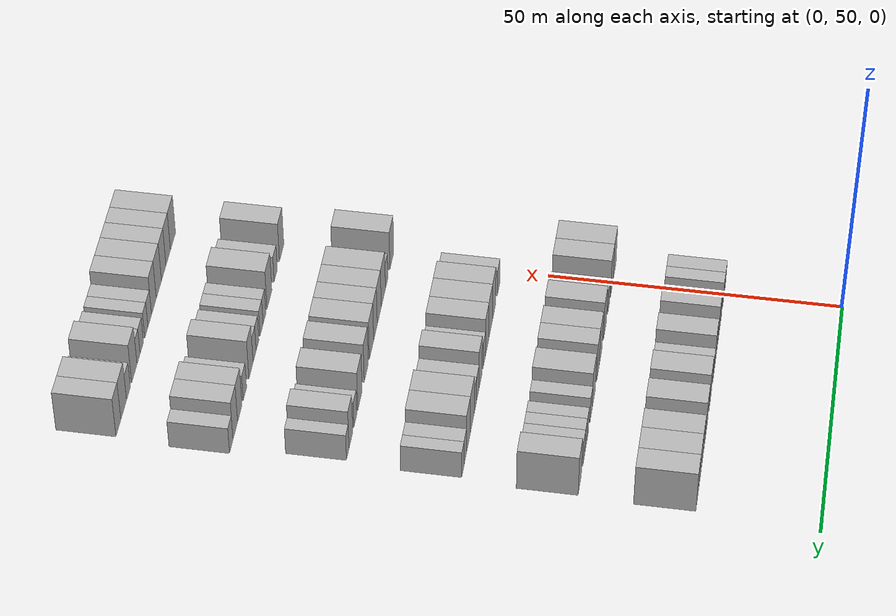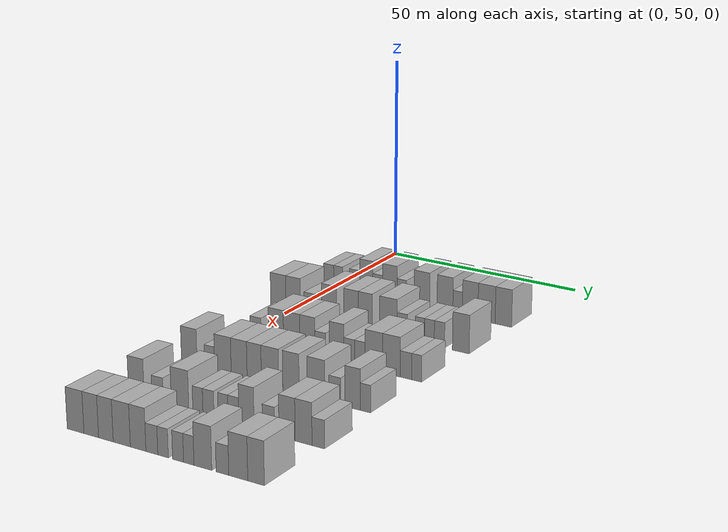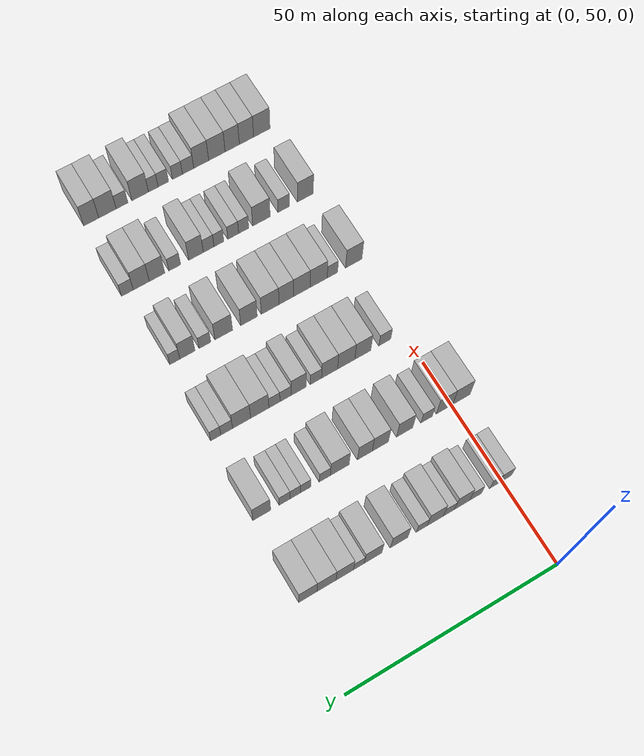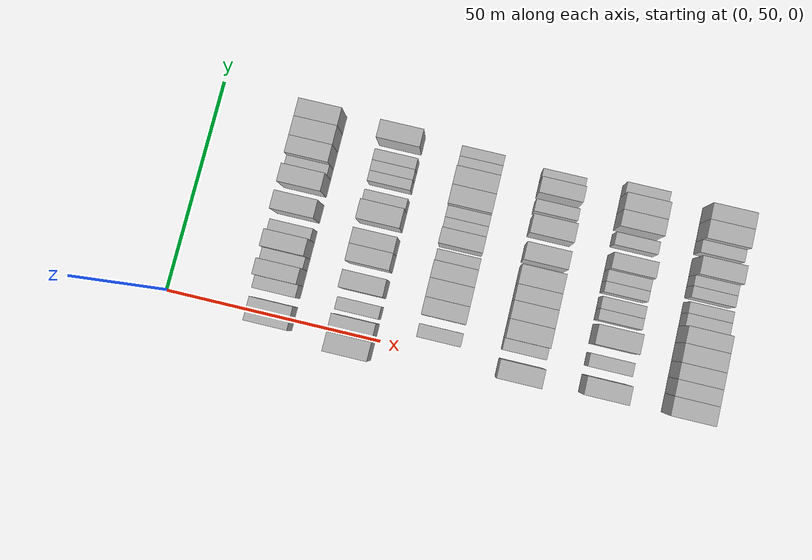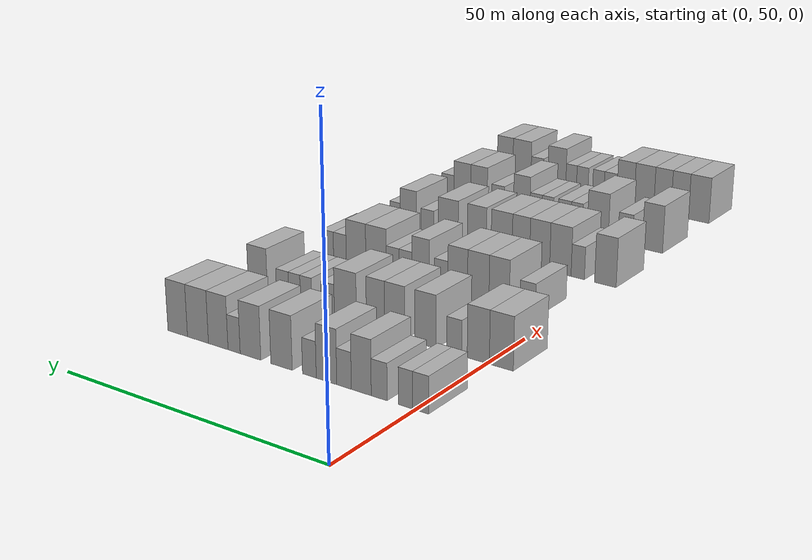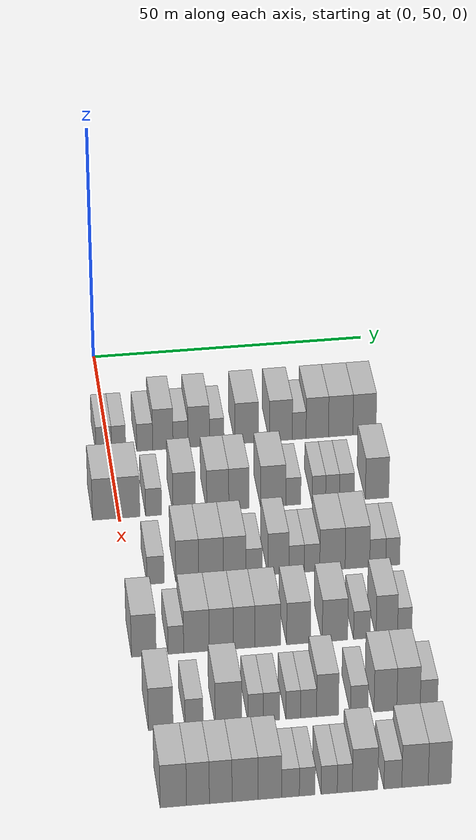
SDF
<sdf version="1.6">
 <world name="default">
  <model name="building_105">
   <static>1</static>
   <pose>25.0000 49.0904 0 0.000000 0.000000 0.000000</pose>
   <link name="link">
    <pose>0 0 3.00 0 0 0</pose>
    <collision name="collision"><geometry><box><size>10.0000 2.8280 6.0000</size></box></geometry></collision>
    <visual name="visual">
     <cast_shadows>0</cast_shadows>
     <geometry><box><size>10.0000 2.8280 6.0000</size></box></geometry>
     <material>
      <script>
       <uri>model://HANNAS_wall/materials/scripts</uri>
       <uri>model://HANNAS_wall/materials/textures</uri>
       <name>vrc/HANNAS_wall</name>
      </script>
     </material>
    </visual>
   </link>
  </model>
  <model name="building_106">
   <static>1</static>
   <pose>25.0000 51.7687 0 0.000000 0.000000 0.000000</pose>
   <link name="link">
    <pose>0 0 3.00 0 0 0</pose>
    <collision name="collision"><geometry><box><size>10.0000 2.5288 6.0000</size></box></geometry></collision>
    <visual name="visual">
     <cast_shadows>0</cast_shadows>
     <geometry><box><size>10.0000 2.5288 6.0000</size></box></geometry>
     <material>
      <script>
       <uri>model://HANNAS_wall/materials/scripts</uri>
       <uri>model://HANNAS_wall/materials/textures</uri>
       <name>vrc/HANNAS_wall</name>
      </script>
     </material>
    </visual>
   </link>
  </model>
  <model name="building_107">
   <static>1</static>
   <pose>25.0000 56.4706 0 0.000000 0.000000 0.000000</pose>
   <link name="link">
    <pose>0 0 3.00 0 0 0</pose>
    <collision name="collision"><geometry><box><size>10.0000 2.8749 6.0000</size></box></geometry></collision>
    <visual name="visual">
     <cast_shadows>0</cast_shadows>
     <geometry><box><size>10.0000 2.8749 6.0000</size></box></geometry>
     <material>
      <script>
       <uri>model://HANNAS_wall/materials/scripts</uri>
       <uri>model://HANNAS_wall/materials/textures</uri>
       <name>vrc/HANNAS_wall</name>
      </script>
     </material>
    </visual>
   </link>
  </model>
  <model name="building_108">
   <static>1</static>
   <pose>25.0000 59.7375 0 0.000000 0.000000 0.000000</pose>
   <link name="link">
    <pose>0 0 4.50 0 0 0</pose>
    <collision name="collision"><geometry><box><size>10.0000 3.6589 9.0000</size></box></geometry></collision>
    <visual name="visual">
     <cast_shadows>0</cast_shadows>
     <geometry><box><size>10.0000 3.6589 9.0000</size></box></geometry>
     <material>
      <script>
       <uri>model://HANNAS_wall/materials/scripts</uri>
       <uri>model://HANNAS_wall/materials/textures</uri>
       <name>vrc/HANNAS_wall</name>
      </script>
     </material>
    </visual>
   </link>
  </model>
  <model name="building_109">
   <static>1</static>
   <pose>25.0000 62.9235 0 0.000000 0.000000 0.000000</pose>
   <link name="link">
    <pose>0 0 3.00 0 0 0</pose>
    <collision name="collision"><geometry><box><size>10.0000 2.7133 6.0000</size></box></geometry></collision>
    <visual name="visual">
     <cast_shadows>0</cast_shadows>
     <geometry><box><size>10.0000 2.7133 6.0000</size></box></geometry>
     <material>
      <script>
       <uri>model://HANNAS_wall/materials/scripts</uri>
       <uri>model://HANNAS_wall/materials/textures</uri>
       <name>vrc/HANNAS_wall</name>
      </script>
     </material>
    </visual>
   </link>
  </model>
  <model name="building_110">
   <static>1</static>
   <pose>25.0000 66.2219 0 0.000000 0.000000 0.000000</pose>
   <link name="link">
    <pose>0 0 4.50 0 0 0</pose>
    <collision name="collision"><geometry><box><size>10.0000 3.8835 9.0000</size></box></geometry></collision>
    <visual name="visual">
     <cast_shadows>0</cast_shadows>
     <geometry><box><size>10.0000 3.8835 9.0000</size></box></geometry>
     <material>
      <script>
       <uri>model://HANNAS_wall/materials/scripts</uri>
       <uri>model://HANNAS_wall/materials/textures</uri>
       <name>vrc/HANNAS_wall</name>
      </script>
     </material>
    </visual>
   </link>
  </model>
  <model name="building_111">
   <static>1</static>
   <pose>25.0000 69.4799 0 0.000000 0.000000 0.000000</pose>
   <link name="link">
    <pose>0 0 3.00 0 0 0</pose>
    <collision name="collision"><geometry><box><size>10.0000 2.6324 6.0000</size></box></geometry></collision>
    <visual name="visual">
     <cast_shadows>0</cast_shadows>
     <geometry><box><size>10.0000 2.6324 6.0000</size></box></geometry>
     <material>
      <script>
       <uri>model://HANNAS_wall/materials/scripts</uri>
       <uri>model://HANNAS_wall/materials/textures</uri>
       <name>vrc/HANNAS_wall</name>
      </script>
     </material>
    </visual>
   </link>
  </model>
  <model name="building_112">
   <static>1</static>
   <pose>25.0000 74.9003 0 0.000000 0.000000 0.000000</pose>
   <link name="link">
    <pose>0 0 4.50 0 0 0</pose>
    <collision name="collision"><geometry><box><size>10.0000 4.2084 9.0000</size></box></geometry></collision>
    <visual name="visual">
     <cast_shadows>0</cast_shadows>
     <geometry><box><size>10.0000 4.2084 9.0000</size></box></geometry>
     <material>
      <script>
       <uri>model://HANNAS_wall/materials/scripts</uri>
       <uri>model://HANNAS_wall/materials/textures</uri>
       <name>vrc/HANNAS_wall</name>
      </script>
     </material>
    </visual>
   </link>
  </model>
  <model name="building_113">
   <static>1</static>
   <pose>25.0000 81.0966 0 0.000000 0.000000 0.000000</pose>
   <link name="link">
    <pose>0 0 4.50 0 0 0</pose>
    <collision name="collision"><geometry><box><size>10.0000 4.1843 9.0000</size></box></geometry></collision>
    <visual name="visual">
     <cast_shadows>0</cast_shadows>
     <geometry><box><size>10.0000 4.1843 9.0000</size></box></geometry>
     <material>
      <script>
       <uri>model://HANNAS_wall/materials/scripts</uri>
       <uri>model://HANNAS_wall/materials/textures</uri>
       <name>vrc/HANNAS_wall</name>
      </script>
     </material>
    </visual>
   </link>
  </model>
  <model name="building_114">
   <static>1</static>
   <pose>25.0000 84.4353 0 0.000000 0.000000 0.000000</pose>
   <link name="link">
    <pose>0 0 3.00 0 0 0</pose>
    <collision name="collision"><geometry><box><size>10.0000 2.4930 6.0000</size></box></geometry></collision>
    <visual name="visual">
     <cast_shadows>0</cast_shadows>
     <geometry><box><size>10.0000 2.4930 6.0000</size></box></geometry>
     <material>
      <script>
       <uri>model://HANNAS_wall/materials/scripts</uri>
       <uri>model://HANNAS_wall/materials/textures</uri>
       <name>vrc/HANNAS_wall</name>
      </script>
     </material>
    </visual>
   </link>
  </model>
  <model name="building_115">
   <static>1</static>
   <pose>25.0000 87.7198 0 0.000000 0.000000 0.000000</pose>
   <link name="link">
    <pose>0 0 4.50 0 0 0</pose>
    <collision name="collision"><geometry><box><size>10.0000 4.0759 9.0000</size></box></geometry></collision>
    <visual name="visual">
     <cast_shadows>0</cast_shadows>
     <geometry><box><size>10.0000 4.0759 9.0000</size></box></geometry>
     <material>
      <script>
       <uri>model://HANNAS_wall/materials/scripts</uri>
       <uri>model://HANNAS_wall/materials/textures</uri>
       <name>vrc/HANNAS_wall</name>
      </script>
     </material>
    </visual>
   </link>
  </model>
  <model name="building_116">
   <static>1</static>
   <pose>25.0000 91.9792 0 0.000000 0.000000 0.000000</pose>
   <link name="link">
    <pose>0 0 4.50 0 0 0</pose>
    <collision name="collision"><geometry><box><size>10.0000 4.4428 9.0000</size></box></geometry></collision>
    <visual name="visual">
     <cast_shadows>0</cast_shadows>
     <geometry><box><size>10.0000 4.4428 9.0000</size></box></geometry>
     <material>
      <script>
       <uri>model://HANNAS_wall/materials/scripts</uri>
       <uri>model://HANNAS_wall/materials/textures</uri>
       <name>vrc/HANNAS_wall</name>
      </script>
     </material>
    </visual>
   </link>
  </model>
  <model name="building_117">
   <static>1</static>
   <pose>25.0000 96.3040 0 0.000000 0.000000 0.000000</pose>
   <link name="link">
    <pose>0 0 4.50 0 0 0</pose>
    <collision name="collision"><geometry><box><size>10.0000 4.2069 9.0000</size></box></geometry></collision>
    <visual name="visual">
     <cast_shadows>0</cast_shadows>
     <geometry><box><size>10.0000 4.2069 9.0000</size></box></geometry>
     <material>
      <script>
       <uri>model://HANNAS_wall/materials/scripts</uri>
       <uri>model://HANNAS_wall/materials/textures</uri>
       <name>vrc/HANNAS_wall</name>
      </script>
     </material>
    </visual>
   </link>
  </model>
  <model name="building_275">
   <static>1</static>
   <pose>44.0000 47.4686 0 0.000000 0.000000 0.000000</pose>
   <link name="link">
    <pose>0 0 4.50 0 0 0</pose>
    <collision name="collision"><geometry><box><size>10.0000 4.2974 9.0000</size></box></geometry></collision>
    <visual name="visual">
     <cast_shadows>0</cast_shadows>
     <geometry><box><size>10.0000 4.2974 9.0000</size></box></geometry>
     <material>
      <script>
       <uri>model://HANNAS_wall/materials/scripts</uri>
       <uri>model://HANNAS_wall/materials/textures</uri>
       <name>vrc/HANNAS_wall</name>
      </script>
     </material>
    </visual>
   </link>
  </model>
  <model name="building_276">
   <static>1</static>
   <pose>44.0000 51.6442 0 0.000000 0.000000 0.000000</pose>
   <link name="link">
    <pose>0 0 4.50 0 0 0</pose>
    <collision name="collision"><geometry><box><size>10.0000 4.0538 9.0000</size></box></geometry></collision>
    <visual name="visual">
     <cast_shadows>0</cast_shadows>
     <geometry><box><size>10.0000 4.0538 9.0000</size></box></geometry>
     <material>
      <script>
       <uri>model://HANNAS_wall/materials/scripts</uri>
       <uri>model://HANNAS_wall/materials/textures</uri>
       <name>vrc/HANNAS_wall</name>
      </script>
     </material>
    </visual>
   </link>
  </model>
  <model name="building_277">
   <static>1</static>
   <pose>44.0000 56.0953 0 0.000000 0.000000 0.000000</pose>
   <link name="link">
    <pose>0 0 3.00 0 0 0</pose>
    <collision name="collision"><geometry><box><size>10.0000 2.8483 6.0000</size></box></geometry></collision>
    <visual name="visual">
     <cast_shadows>0</cast_shadows>
     <geometry><box><size>10.0000 2.8483 6.0000</size></box></geometry>
     <material>
      <script>
       <uri>model://HANNAS_wall/materials/scripts</uri>
       <uri>model://HANNAS_wall/materials/textures</uri>
       <name>vrc/HANNAS_wall</name>
      </script>
     </material>
    </visual>
   </link>
  </model>
  <model name="building_278">
   <static>1</static>
   <pose>44.0000 61.5093 0 0.000000 0.000000 0.000000</pose>
   <link name="link">
    <pose>0 0 4.50 0 0 0</pose>
    <collision name="collision"><geometry><box><size>10.0000 3.9797 9.0000</size></box></geometry></collision>
    <visual name="visual">
     <cast_shadows>0</cast_shadows>
     <geometry><box><size>10.0000 3.9797 9.0000</size></box></geometry>
     <material>
      <script>
       <uri>model://HANNAS_wall/materials/scripts</uri>
       <uri>model://HANNAS_wall/materials/textures</uri>
       <name>vrc/HANNAS_wall</name>
      </script>
     </material>
    </visual>
   </link>
  </model>
  <model name="building_279">
   <static>1</static>
   <pose>44.0000 67.4520 0 0.000000 0.000000 0.000000</pose>
   <link name="link">
    <pose>0 0 4.50 0 0 0</pose>
    <collision name="collision"><geometry><box><size>10.0000 3.9058 9.0000</size></box></geometry></collision>
    <visual name="visual">
     <cast_shadows>0</cast_shadows>
     <geometry><box><size>10.0000 3.9058 9.0000</size></box></geometry>
     <material>
      <script>
       <uri>model://HANNAS_wall/materials/scripts</uri>
       <uri>model://HANNAS_wall/materials/textures</uri>
       <name>vrc/HANNAS_wall</name>
      </script>
     </material>
    </visual>
   </link>
  </model>
  <model name="building_280">
   <static>1</static>
   <pose>44.0000 71.2181 0 0.000000 0.000000 0.000000</pose>
   <link name="link">
    <pose>0 0 4.50 0 0 0</pose>
    <collision name="collision"><geometry><box><size>10.0000 3.6265 9.0000</size></box></geometry></collision>
    <visual name="visual">
     <cast_shadows>0</cast_shadows>
     <geometry><box><size>10.0000 3.6265 9.0000</size></box></geometry>
     <material>
      <script>
       <uri>model://HANNAS_wall/materials/scripts</uri>
       <uri>model://HANNAS_wall/materials/textures</uri>
       <name>vrc/HANNAS_wall</name>
      </script>
     </material>
    </visual>
   </link>
  </model>
  <model name="building_281">
   <static>1</static>
   <pose>44.0000 77.2804 0 0.000000 0.000000 0.000000</pose>
   <link name="link">
    <pose>0 0 4.50 0 0 0</pose>
    <collision name="collision"><geometry><box><size>10.0000 4.4981 9.0000</size></box></geometry></collision>
    <visual name="visual">
     <cast_shadows>0</cast_shadows>
     <geometry><box><size>10.0000 4.4981 9.0000</size></box></geometry>
     <material>
      <script>
       <uri>model://HANNAS_wall/materials/scripts</uri>
       <uri>model://HANNAS_wall/materials/textures</uri>
       <name>vrc/HANNAS_wall</name>
      </script>
     </material>
    </visual>
   </link>
  </model>
  <model name="building_282">
   <static>1</static>
   <pose>44.0000 80.8640 0 0.000000 0.000000 0.000000</pose>
   <link name="link">
    <pose>0 0 3.00 0 0 0</pose>
    <collision name="collision"><geometry><box><size>10.0000 2.6691 6.0000</size></box></geometry></collision>
    <visual name="visual">
     <cast_shadows>0</cast_shadows>
     <geometry><box><size>10.0000 2.6691 6.0000</size></box></geometry>
     <material>
      <script>
       <uri>model://HANNAS_wall/materials/scripts</uri>
       <uri>model://HANNAS_wall/materials/textures</uri>
       <name>vrc/HANNAS_wall</name>
      </script>
     </material>
    </visual>
   </link>
  </model>
  <model name="building_283">
   <static>1</static>
   <pose>44.0000 85.4052 0 0.000000 0.000000 0.000000</pose>
   <link name="link">
    <pose>0 0 3.00 0 0 0</pose>
    <collision name="collision"><geometry><box><size>10.0000 2.4133 6.0000</size></box></geometry></collision>
    <visual name="visual">
     <cast_shadows>0</cast_shadows>
     <geometry><box><size>10.0000 2.4133 6.0000</size></box></geometry>
     <material>
      <script>
       <uri>model://HANNAS_wall/materials/scripts</uri>
       <uri>model://HANNAS_wall/materials/textures</uri>
       <name>vrc/HANNAS_wall</name>
      </script>
     </material>
    </visual>
   </link>
  </model>
  <model name="building_284">
   <static>1</static>
   <pose>44.0000 87.8489 0 0.000000 0.000000 0.000000</pose>
   <link name="link">
    <pose>0 0 3.00 0 0 0</pose>
    <collision name="collision"><geometry><box><size>10.0000 2.4741 6.0000</size></box></geometry></collision>
    <visual name="visual">
     <cast_shadows>0</cast_shadows>
     <geometry><box><size>10.0000 2.4741 6.0000</size></box></geometry>
     <material>
      <script>
       <uri>model://HANNAS_wall/materials/scripts</uri>
       <uri>model://HANNAS_wall/materials/textures</uri>
       <name>vrc/HANNAS_wall</name>
      </script>
     </material>
    </visual>
   </link>
  </model>
  <model name="building_285">
   <static>1</static>
   <pose>44.0000 90.3911 0 0.000000 0.000000 0.000000</pose>
   <link name="link">
    <pose>0 0 3.00 0 0 0</pose>
    <collision name="collision"><geometry><box><size>10.0000 2.6103 6.0000</size></box></geometry></collision>
    <visual name="visual">
     <cast_shadows>0</cast_shadows>
     <geometry><box><size>10.0000 2.6103 6.0000</size></box></geometry>
     <material>
      <script>
       <uri>model://HANNAS_wall/materials/scripts</uri>
       <uri>model://HANNAS_wall/materials/textures</uri>
       <name>vrc/HANNAS_wall</name>
      </script>
     </material>
    </visual>
   </link>
  </model>
  <model name="building_286">
   <static>1</static>
   <pose>44.0000 95.7840 0 0.000000 0.000000 0.000000</pose>
   <link name="link">
    <pose>0 0 4.50 0 0 0</pose>
    <collision name="collision"><geometry><box><size>10.0000 4.1754 9.0000</size></box></geometry></collision>
    <visual name="visual">
     <cast_shadows>0</cast_shadows>
     <geometry><box><size>10.0000 4.1754 9.0000</size></box></geometry>
     <material>
      <script>
       <uri>model://HANNAS_wall/materials/scripts</uri>
       <uri>model://HANNAS_wall/materials/textures</uri>
       <name>vrc/HANNAS_wall</name>
      </script>
     </material>
    </visual>
   </link>
  </model>
  <model name="building_441">
   <static>1</static>
   <pose>63.0000 54.4669 0 0.000000 0.000000 0.000000</pose>
   <link name="link">
    <pose>0 0 3.00 0 0 0</pose>
    <collision name="collision"><geometry><box><size>10.0000 2.9928 6.0000</size></box></geometry></collision>
    <visual name="visual">
     <cast_shadows>0</cast_shadows>
     <geometry><box><size>10.0000 2.9928 6.0000</size></box></geometry>
     <material>
      <script>
       <uri>model://HANNAS_wall/materials/scripts</uri>
       <uri>model://HANNAS_wall/materials/textures</uri>
       <name>vrc/HANNAS_wall</name>
      </script>
     </material>
    </visual>
   </link>
  </model>
  <model name="building_442">
   <static>1</static>
   <pose>63.0000 59.9455 0 0.000000 0.000000 0.000000</pose>
   <link name="link">
    <pose>0 0 4.50 0 0 0</pose>
    <collision name="collision"><geometry><box><size>10.0000 3.9645 9.0000</size></box></geometry></collision>
    <visual name="visual">
     <cast_shadows>0</cast_shadows>
     <geometry><box><size>10.0000 3.9645 9.0000</size></box></geometry>
     <material>
      <script>
       <uri>model://HANNAS_wall/materials/scripts</uri>
       <uri>model://HANNAS_wall/materials/textures</uri>
       <name>vrc/HANNAS_wall</name>
      </script>
     </material>
    </visual>
   </link>
  </model>
  <model name="building_443">
   <static>1</static>
   <pose>63.0000 64.0669 0 0.000000 0.000000 0.000000</pose>
   <link name="link">
    <pose>0 0 4.50 0 0 0</pose>
    <collision name="collision"><geometry><box><size>10.0000 4.2781 9.0000</size></box></geometry></collision>
    <visual name="visual">
     <cast_shadows>0</cast_shadows>
     <geometry><box><size>10.0000 4.2781 9.0000</size></box></geometry>
     <material>
      <script>
       <uri>model://HANNAS_wall/materials/scripts</uri>
       <uri>model://HANNAS_wall/materials/textures</uri>
       <name>vrc/HANNAS_wall</name>
      </script>
     </material>
    </visual>
   </link>
  </model>
  <model name="building_444">
   <static>1</static>
   <pose>63.0000 68.1774 0 0.000000 0.000000 0.000000</pose>
   <link name="link">
    <pose>0 0 4.50 0 0 0</pose>
    <collision name="collision"><geometry><box><size>10.0000 3.9430 9.0000</size></box></geometry></collision>
    <visual name="visual">
     <cast_shadows>0</cast_shadows>
     <geometry><box><size>10.0000 3.9430 9.0000</size></box></geometry>
     <material>
      <script>
       <uri>model://HANNAS_wall/materials/scripts</uri>
       <uri>model://HANNAS_wall/materials/textures</uri>
       <name>vrc/HANNAS_wall</name>
      </script>
     </material>
    </visual>
   </link>
  </model>
  <model name="building_445">
   <static>1</static>
   <pose>63.0000 71.5409 0 0.000000 0.000000 0.000000</pose>
   <link name="link">
    <pose>0 0 3.00 0 0 0</pose>
    <collision name="collision"><geometry><box><size>10.0000 2.7840 6.0000</size></box></geometry></collision>
    <visual name="visual">
     <cast_shadows>0</cast_shadows>
     <geometry><box><size>10.0000 2.7840 6.0000</size></box></geometry>
     <material>
      <script>
       <uri>model://HANNAS_wall/materials/scripts</uri>
       <uri>model://HANNAS_wall/materials/textures</uri>
       <name>vrc/HANNAS_wall</name>
      </script>
     </material>
    </visual>
   </link>
  </model>
  <model name="building_446">
   <static>1</static>
   <pose>63.0000 75.7592 0 0.000000 0.000000 0.000000</pose>
   <link name="link">
    <pose>0 0 4.50 0 0 0</pose>
    <collision name="collision"><geometry><box><size>10.0000 3.6525 9.0000</size></box></geometry></collision>
    <visual name="visual">
     <cast_shadows>0</cast_shadows>
     <geometry><box><size>10.0000 3.6525 9.0000</size></box></geometry>
     <material>
      <script>
       <uri>model://HANNAS_wall/materials/scripts</uri>
       <uri>model://HANNAS_wall/materials/textures</uri>
       <name>vrc/HANNAS_wall</name>
      </script>
     </material>
    </visual>
   </link>
  </model>
  <model name="building_447">
   <static>1</static>
   <pose>63.0000 78.9368 0 0.000000 0.000000 0.000000</pose>
   <link name="link">
    <pose>0 0 3.00 0 0 0</pose>
    <collision name="collision"><geometry><box><size>10.0000 2.7028 6.0000</size></box></geometry></collision>
    <visual name="visual">
     <cast_shadows>0</cast_shadows>
     <geometry><box><size>10.0000 2.7028 6.0000</size></box></geometry>
     <material>
      <script>
       <uri>model://HANNAS_wall/materials/scripts</uri>
       <uri>model://HANNAS_wall/materials/textures</uri>
       <name>vrc/HANNAS_wall</name>
      </script>
     </material>
    </visual>
   </link>
  </model>
  <model name="building_448">
   <static>1</static>
   <pose>63.0000 81.6264 0 0.000000 0.000000 0.000000</pose>
   <link name="link">
    <pose>0 0 3.00 0 0 0</pose>
    <collision name="collision"><geometry><box><size>10.0000 2.6762 6.0000</size></box></geometry></collision>
    <visual name="visual">
     <cast_shadows>0</cast_shadows>
     <geometry><box><size>10.0000 2.6762 6.0000</size></box></geometry>
     <material>
      <script>
       <uri>model://HANNAS_wall/materials/scripts</uri>
       <uri>model://HANNAS_wall/materials/textures</uri>
       <name>vrc/HANNAS_wall</name>
      </script>
     </material>
    </visual>
   </link>
  </model>
  <model name="building_449">
   <static>1</static>
   <pose>63.0000 85.1774 0 0.000000 0.000000 0.000000</pose>
   <link name="link">
    <pose>0 0 4.50 0 0 0</pose>
    <collision name="collision"><geometry><box><size>10.0000 4.4258 9.0000</size></box></geometry></collision>
    <visual name="visual">
     <cast_shadows>0</cast_shadows>
     <geometry><box><size>10.0000 4.4258 9.0000</size></box></geometry>
     <material>
      <script>
       <uri>model://HANNAS_wall/materials/scripts</uri>
       <uri>model://HANNAS_wall/materials/textures</uri>
       <name>vrc/HANNAS_wall</name>
      </script>
     </material>
    </visual>
   </link>
  </model>
  <model name="building_450">
   <static>1</static>
   <pose>63.0000 89.5375 0 0.000000 0.000000 0.000000</pose>
   <link name="link">
    <pose>0 0 4.50 0 0 0</pose>
    <collision name="collision"><geometry><box><size>10.0000 4.2944 9.0000</size></box></geometry></collision>
    <visual name="visual">
     <cast_shadows>0</cast_shadows>
     <geometry><box><size>10.0000 4.2944 9.0000</size></box></geometry>
     <material>
      <script>
       <uri>model://HANNAS_wall/materials/scripts</uri>
       <uri>model://HANNAS_wall/materials/textures</uri>
       <name>vrc/HANNAS_wall</name>
      </script>
     </material>
    </visual>
   </link>
  </model>
  <model name="building_451">
   <static>1</static>
   <pose>63.0000 93.0901 0 0.000000 0.000000 0.000000</pose>
   <link name="link">
    <pose>0 0 3.00 0 0 0</pose>
    <collision name="collision"><geometry><box><size>10.0000 2.8109 6.0000</size></box></geometry></collision>
    <visual name="visual">
     <cast_shadows>0</cast_shadows>
     <geometry><box><size>10.0000 2.8109 6.0000</size></box></geometry>
     <material>
      <script>
       <uri>model://HANNAS_wall/materials/scripts</uri>
       <uri>model://HANNAS_wall/materials/textures</uri>
       <name>vrc/HANNAS_wall</name>
      </script>
     </material>
    </visual>
   </link>
  </model>
  <model name="building_452">
   <static>1</static>
   <pose>63.0000 95.7047 0 0.000000 0.000000 0.000000</pose>
   <link name="link">
    <pose>0 0 3.00 0 0 0</pose>
    <collision name="collision"><geometry><box><size>10.0000 2.4183 6.0000</size></box></geometry></collision>
    <visual name="visual">
     <cast_shadows>0</cast_shadows>
     <geometry><box><size>10.0000 2.4183 6.0000</size></box></geometry>
     <material>
      <script>
       <uri>model://HANNAS_wall/materials/scripts</uri>
       <uri>model://HANNAS_wall/materials/textures</uri>
       <name>vrc/HANNAS_wall</name>
      </script>
     </material>
    </visual>
   </link>
  </model>
  <model name="building_606">
   <static>1</static>
   <pose>82.0000 50.5020 0 0.000000 0.000000 0.000000</pose>
   <link name="link">
    <pose>0 0 4.50 0 0 0</pose>
    <collision name="collision"><geometry><box><size>10.0000 4.1785 9.0000</size></box></geometry></collision>
    <visual name="visual">
     <cast_shadows>0</cast_shadows>
     <geometry><box><size>10.0000 4.1785 9.0000</size></box></geometry>
     <material>
      <script>
       <uri>model://HANNAS_wall/materials/scripts</uri>
       <uri>model://HANNAS_wall/materials/textures</uri>
       <name>vrc/HANNAS_wall</name>
      </script>
     </material>
    </visual>
   </link>
  </model>
  <model name="building_607">
   <static>1</static>
   <pose>82.0000 55.9157 0 0.000000 0.000000 0.000000</pose>
   <link name="link">
    <pose>0 0 3.00 0 0 0</pose>
    <collision name="collision"><geometry><box><size>10.0000 2.6488 6.0000</size></box></geometry></collision>
    <visual name="visual">
     <cast_shadows>0</cast_shadows>
     <geometry><box><size>10.0000 2.6488 6.0000</size></box></geometry>
     <material>
      <script>
       <uri>model://HANNAS_wall/materials/scripts</uri>
       <uri>model://HANNAS_wall/materials/textures</uri>
       <name>vrc/HANNAS_wall</name>
      </script>
     </material>
    </visual>
   </link>
  </model>
  <model name="building_608">
   <static>1</static>
   <pose>82.0000 59.4003 0 0.000000 0.000000 0.000000</pose>
   <link name="link">
    <pose>0 0 4.50 0 0 0</pose>
    <collision name="collision"><geometry><box><size>10.0000 4.3206 9.0000</size></box></geometry></collision>
    <visual name="visual">
     <cast_shadows>0</cast_shadows>
     <geometry><box><size>10.0000 4.3206 9.0000</size></box></geometry>
     <material>
      <script>
       <uri>model://HANNAS_wall/materials/scripts</uri>
       <uri>model://HANNAS_wall/materials/textures</uri>
       <name>vrc/HANNAS_wall</name>
      </script>
     </material>
    </visual>
   </link>
  </model>
  <model name="building_609">
   <static>1</static>
   <pose>82.0000 63.6124 0 0.000000 0.000000 0.000000</pose>
   <link name="link">
    <pose>0 0 4.50 0 0 0</pose>
    <collision name="collision"><geometry><box><size>10.0000 4.1036 9.0000</size></box></geometry></collision>
    <visual name="visual">
     <cast_shadows>0</cast_shadows>
     <geometry><box><size>10.0000 4.1036 9.0000</size></box></geometry>
     <material>
      <script>
       <uri>model://HANNAS_wall/materials/scripts</uri>
       <uri>model://HANNAS_wall/materials/textures</uri>
       <name>vrc/HANNAS_wall</name>
      </script>
     </material>
    </visual>
   </link>
  </model>
  <model name="building_610">
   <static>1</static>
   <pose>82.0000 67.4878 0 0.000000 0.000000 0.000000</pose>
   <link name="link">
    <pose>0 0 4.50 0 0 0</pose>
    <collision name="collision"><geometry><box><size>10.0000 3.6471 9.0000</size></box></geometry></collision>
    <visual name="visual">
     <cast_shadows>0</cast_shadows>
     <geometry><box><size>10.0000 3.6471 9.0000</size></box></geometry>
     <material>
      <script>
       <uri>model://HANNAS_wall/materials/scripts</uri>
       <uri>model://HANNAS_wall/materials/textures</uri>
       <name>vrc/HANNAS_wall</name>
      </script>
     </material>
    </visual>
   </link>
  </model>
  <model name="building_611">
   <static>1</static>
   <pose>82.0000 71.5154 0 0.000000 0.000000 0.000000</pose>
   <link name="link">
    <pose>0 0 4.50 0 0 0</pose>
    <collision name="collision"><geometry><box><size>10.0000 4.4082 9.0000</size></box></geometry></collision>
    <visual name="visual">
     <cast_shadows>0</cast_shadows>
     <geometry><box><size>10.0000 4.4082 9.0000</size></box></geometry>
     <material>
      <script>
       <uri>model://HANNAS_wall/materials/scripts</uri>
       <uri>model://HANNAS_wall/materials/textures</uri>
       <name>vrc/HANNAS_wall</name>
      </script>
     </material>
    </visual>
   </link>
  </model>
  <model name="building_612">
   <static>1</static>
   <pose>82.0000 76.7569 0 0.000000 0.000000 0.000000</pose>
   <link name="link">
    <pose>0 0 4.50 0 0 0</pose>
    <collision name="collision"><geometry><box><size>10.0000 4.0746 9.0000</size></box></geometry></collision>
    <visual name="visual">
     <cast_shadows>0</cast_shadows>
     <geometry><box><size>10.0000 4.0746 9.0000</size></box></geometry>
     <material>
      <script>
       <uri>model://HANNAS_wall/materials/scripts</uri>
       <uri>model://HANNAS_wall/materials/textures</uri>
       <name>vrc/HANNAS_wall</name>
      </script>
     </material>
    </visual>
   </link>
  </model>
  <model name="building_613">
   <static>1</static>
   <pose>82.0000 82.9622 0 0.000000 0.000000 0.000000</pose>
   <link name="link">
    <pose>0 0 4.50 0 0 0</pose>
    <collision name="collision"><geometry><box><size>10.0000 4.3360 9.0000</size></box></geometry></collision>
    <visual name="visual">
     <cast_shadows>0</cast_shadows>
     <geometry><box><size>10.0000 4.3360 9.0000</size></box></geometry>
     <material>
      <script>
       <uri>model://HANNAS_wall/materials/scripts</uri>
       <uri>model://HANNAS_wall/materials/textures</uri>
       <name>vrc/HANNAS_wall</name>
      </script>
     </material>
    </visual>
   </link>
  </model>
  <model name="building_614">
   <static>1</static>
   <pose>82.0000 87.5496 0 0.000000 0.000000 0.000000</pose>
   <link name="link">
    <pose>0 0 3.00 0 0 0</pose>
    <collision name="collision"><geometry><box><size>10.0000 2.8387 6.0000</size></box></geometry></collision>
    <visual name="visual">
     <cast_shadows>0</cast_shadows>
     <geometry><box><size>10.0000 2.8387 6.0000</size></box></geometry>
     <material>
      <script>
       <uri>model://HANNAS_wall/materials/scripts</uri>
       <uri>model://HANNAS_wall/materials/textures</uri>
       <name>vrc/HANNAS_wall</name>
      </script>
     </material>
    </visual>
   </link>
  </model>
  <model name="building_615">
   <static>1</static>
   <pose>82.0000 91.8024 0 0.000000 0.000000 0.000000</pose>
   <link name="link">
    <pose>0 0 4.50 0 0 0</pose>
    <collision name="collision"><geometry><box><size>10.0000 3.6670 9.0000</size></box></geometry></collision>
    <visual name="visual">
     <cast_shadows>0</cast_shadows>
     <geometry><box><size>10.0000 3.6670 9.0000</size></box></geometry>
     <material>
      <script>
       <uri>model://HANNAS_wall/materials/scripts</uri>
       <uri>model://HANNAS_wall/materials/textures</uri>
       <name>vrc/HANNAS_wall</name>
      </script>
     </material>
    </visual>
   </link>
  </model>
  <model name="building_616">
   <static>1</static>
   <pose>82.0000 94.8509 0 0.000000 0.000000 0.000000</pose>
   <link name="link">
    <pose>0 0 3.00 0 0 0</pose>
    <collision name="collision"><geometry><box><size>10.0000 2.4301 6.0000</size></box></geometry></collision>
    <visual name="visual">
     <cast_shadows>0</cast_shadows>
     <geometry><box><size>10.0000 2.4301 6.0000</size></box></geometry>
     <material>
      <script>
       <uri>model://HANNAS_wall/materials/scripts</uri>
       <uri>model://HANNAS_wall/materials/textures</uri>
       <name>vrc/HANNAS_wall</name>
      </script>
     </material>
    </visual>
   </link>
  </model>
  <model name="building_770">
   <static>1</static>
   <pose>101.0000 51.3634 0 0.000000 0.000000 0.000000</pose>
   <link name="link">
    <pose>0 0 4.50 0 0 0</pose>
    <collision name="collision"><geometry><box><size>10.0000 4.0820 9.0000</size></box></geometry></collision>
    <visual name="visual">
     <cast_shadows>0</cast_shadows>
     <geometry><box><size>10.0000 4.0820 9.0000</size></box></geometry>
     <material>
      <script>
       <uri>model://HANNAS_wall/materials/scripts</uri>
       <uri>model://HANNAS_wall/materials/textures</uri>
       <name>vrc/HANNAS_wall</name>
      </script>
     </material>
    </visual>
   </link>
  </model>
  <model name="building_771">
   <static>1</static>
   <pose>101.0000 56.8908 0 0.000000 0.000000 0.000000</pose>
   <link name="link">
    <pose>0 0 3.00 0 0 0</pose>
    <collision name="collision"><geometry><box><size>10.0000 2.9729 6.0000</size></box></geometry></collision>
    <visual name="visual">
     <cast_shadows>0</cast_shadows>
     <geometry><box><size>10.0000 2.9729 6.0000</size></box></geometry>
     <material>
      <script>
       <uri>model://HANNAS_wall/materials/scripts</uri>
       <uri>model://HANNAS_wall/materials/textures</uri>
       <name>vrc/HANNAS_wall</name>
      </script>
     </material>
    </visual>
   </link>
  </model>
  <model name="building_772">
   <static>1</static>
   <pose>101.0000 62.5973 0 0.000000 0.000000 0.000000</pose>
   <link name="link">
    <pose>0 0 4.50 0 0 0</pose>
    <collision name="collision"><geometry><box><size>10.0000 4.4400 9.0000</size></box></geometry></collision>
    <visual name="visual">
     <cast_shadows>0</cast_shadows>
     <geometry><box><size>10.0000 4.4400 9.0000</size></box></geometry>
     <material>
      <script>
       <uri>model://HANNAS_wall/materials/scripts</uri>
       <uri>model://HANNAS_wall/materials/textures</uri>
       <name>vrc/HANNAS_wall</name>
      </script>
     </material>
    </visual>
   </link>
  </model>
  <model name="building_773">
   <static>1</static>
   <pose>101.0000 67.0839 0 0.000000 0.000000 0.000000</pose>
   <link name="link">
    <pose>0 0 3.00 0 0 0</pose>
    <collision name="collision"><geometry><box><size>10.0000 2.5333 6.0000</size></box></geometry></collision>
    <visual name="visual">
     <cast_shadows>0</cast_shadows>
     <geometry><box><size>10.0000 2.5333 6.0000</size></box></geometry>
     <material>
      <script>
       <uri>model://HANNAS_wall/materials/scripts</uri>
       <uri>model://HANNAS_wall/materials/textures</uri>
       <name>vrc/HANNAS_wall</name>
      </script>
     </material>
    </visual>
   </link>
  </model>
  <model name="building_774">
   <static>1</static>
   <pose>101.0000 69.7295 0 0.000000 0.000000 0.000000</pose>
   <link name="link">
    <pose>0 0 3.00 0 0 0</pose>
    <collision name="collision"><geometry><box><size>10.0000 2.7579 6.0000</size></box></geometry></collision>
    <visual name="visual">
     <cast_shadows>0</cast_shadows>
     <geometry><box><size>10.0000 2.7579 6.0000</size></box></geometry>
     <material>
      <script>
       <uri>model://HANNAS_wall/materials/scripts</uri>
       <uri>model://HANNAS_wall/materials/textures</uri>
       <name>vrc/HANNAS_wall</name>
      </script>
     </material>
    </visual>
   </link>
  </model>
  <model name="building_775">
   <static>1</static>
   <pose>101.0000 73.3283 0 0.000000 0.000000 0.000000</pose>
   <link name="link">
    <pose>0 0 3.00 0 0 0</pose>
    <collision name="collision"><geometry><box><size>10.0000 2.4397 6.0000</size></box></geometry></collision>
    <visual name="visual">
     <cast_shadows>0</cast_shadows>
     <geometry><box><size>10.0000 2.4397 6.0000</size></box></geometry>
     <material>
      <script>
       <uri>model://HANNAS_wall/materials/scripts</uri>
       <uri>model://HANNAS_wall/materials/textures</uri>
       <name>vrc/HANNAS_wall</name>
      </script>
     </material>
    </visual>
   </link>
  </model>
  <model name="building_776">
   <static>1</static>
   <pose>101.0000 75.8856 0 0.000000 0.000000 0.000000</pose>
   <link name="link">
    <pose>0 0 3.00 0 0 0</pose>
    <collision name="collision"><geometry><box><size>10.0000 2.6748 6.0000</size></box></geometry></collision>
    <visual name="visual">
     <cast_shadows>0</cast_shadows>
     <geometry><box><size>10.0000 2.6748 6.0000</size></box></geometry>
     <material>
      <script>
       <uri>model://HANNAS_wall/materials/scripts</uri>
       <uri>model://HANNAS_wall/materials/textures</uri>
       <name>vrc/HANNAS_wall</name>
      </script>
     </material>
    </visual>
   </link>
  </model>
  <model name="building_777">
   <static>1</static>
   <pose>101.0000 79.0528 0 0.000000 0.000000 0.000000</pose>
   <link name="link">
    <pose>0 0 4.50 0 0 0</pose>
    <collision name="collision"><geometry><box><size>10.0000 3.6597 9.0000</size></box></geometry></collision>
    <visual name="visual">
     <cast_shadows>0</cast_shadows>
     <geometry><box><size>10.0000 3.6597 9.0000</size></box></geometry>
     <material>
      <script>
       <uri>model://HANNAS_wall/materials/scripts</uri>
       <uri>model://HANNAS_wall/materials/textures</uri>
       <name>vrc/HANNAS_wall</name>
      </script>
     </material>
    </visual>
   </link>
  </model>
  <model name="building_778">
   <static>1</static>
   <pose>101.0000 84.3456 0 0.000000 0.000000 0.000000</pose>
   <link name="link">
    <pose>0 0 3.00 0 0 0</pose>
    <collision name="collision"><geometry><box><size>10.0000 2.9260 6.0000</size></box></geometry></collision>
    <visual name="visual">
     <cast_shadows>0</cast_shadows>
     <geometry><box><size>10.0000 2.9260 6.0000</size></box></geometry>
     <material>
      <script>
       <uri>model://HANNAS_wall/materials/scripts</uri>
       <uri>model://HANNAS_wall/materials/textures</uri>
       <name>vrc/HANNAS_wall</name>
      </script>
     </material>
    </visual>
   </link>
  </model>
  <model name="building_779">
   <static>1</static>
   <pose>101.0000 88.7124 0 0.000000 0.000000 0.000000</pose>
   <link name="link">
    <pose>0 0 4.50 0 0 0</pose>
    <collision name="collision"><geometry><box><size>10.0000 3.8077 9.0000</size></box></geometry></collision>
    <visual name="visual">
     <cast_shadows>0</cast_shadows>
     <geometry><box><size>10.0000 3.8077 9.0000</size></box></geometry>
     <material>
      <script>
       <uri>model://HANNAS_wall/materials/scripts</uri>
       <uri>model://HANNAS_wall/materials/textures</uri>
       <name>vrc/HANNAS_wall</name>
      </script>
     </material>
    </visual>
   </link>
  </model>
  <model name="building_780">
   <static>1</static>
   <pose>101.0000 92.5719 0 0.000000 0.000000 0.000000</pose>
   <link name="link">
    <pose>0 0 4.50 0 0 0</pose>
    <collision name="collision"><geometry><box><size>10.0000 3.9113 9.0000</size></box></geometry></collision>
    <visual name="visual">
     <cast_shadows>0</cast_shadows>
     <geometry><box><size>10.0000 3.9113 9.0000</size></box></geometry>
     <material>
      <script>
       <uri>model://HANNAS_wall/materials/scripts</uri>
       <uri>model://HANNAS_wall/materials/textures</uri>
       <name>vrc/HANNAS_wall</name>
      </script>
     </material>
    </visual>
   </link>
  </model>
  <model name="building_781">
   <static>1</static>
   <pose>101.0000 95.9721 0 0.000000 0.000000 0.000000</pose>
   <link name="link">
    <pose>0 0 3.00 0 0 0</pose>
    <collision name="collision"><geometry><box><size>10.0000 2.8891 6.0000</size></box></geometry></collision>
    <visual name="visual">
     <cast_shadows>0</cast_shadows>
     <geometry><box><size>10.0000 2.8891 6.0000</size></box></geometry>
     <material>
      <script>
       <uri>model://HANNAS_wall/materials/scripts</uri>
       <uri>model://HANNAS_wall/materials/textures</uri>
       <name>vrc/HANNAS_wall</name>
      </script>
     </material>
    </visual>
   </link>
  </model>
  <model name="building_948">
   <static>1</static>
   <pose>120.0000 51.4036 0 0.000000 0.000000 0.000000</pose>
   <link name="link">
    <pose>0 0 4.50 0 0 0</pose>
    <collision name="collision"><geometry><box><size>10.0000 4.2784 9.0000</size></box></geometry></collision>
    <visual name="visual">
     <cast_shadows>0</cast_shadows>
     <geometry><box><size>10.0000 4.2784 9.0000</size></box></geometry>
     <material>
      <script>
       <uri>model://HANNAS_wall/materials/scripts</uri>
       <uri>model://HANNAS_wall/materials/textures</uri>
       <name>vrc/HANNAS_wall</name>
      </script>
     </material>
    </visual>
   </link>
  </model>
  <model name="building_949">
   <static>1</static>
   <pose>120.0000 55.3896 0 0.000000 0.000000 0.000000</pose>
   <link name="link">
    <pose>0 0 4.50 0 0 0</pose>
    <collision name="collision"><geometry><box><size>10.0000 3.6936 9.0000</size></box></geometry></collision>
    <visual name="visual">
     <cast_shadows>0</cast_shadows>
     <geometry><box><size>10.0000 3.6936 9.0000</size></box></geometry>
     <material>
      <script>
       <uri>model://HANNAS_wall/materials/scripts</uri>
       <uri>model://HANNAS_wall/materials/textures</uri>
       <name>vrc/HANNAS_wall</name>
      </script>
     </material>
    </visual>
   </link>
  </model>
  <model name="building_950">
   <static>1</static>
   <pose>120.0000 59.0723 0 0.000000 0.000000 0.000000</pose>
   <link name="link">
    <pose>0 0 4.50 0 0 0</pose>
    <collision name="collision"><geometry><box><size>10.0000 3.6718 9.0000</size></box></geometry></collision>
    <visual name="visual">
     <cast_shadows>0</cast_shadows>
     <geometry><box><size>10.0000 3.6718 9.0000</size></box></geometry>
     <material>
      <script>
       <uri>model://HANNAS_wall/materials/scripts</uri>
       <uri>model://HANNAS_wall/materials/textures</uri>
       <name>vrc/HANNAS_wall</name>
      </script>
     </material>
    </visual>
   </link>
  </model>
  <model name="building_951">
   <static>1</static>
   <pose>120.0000 63.0277 0 0.000000 0.000000 0.000000</pose>
   <link name="link">
    <pose>0 0 4.50 0 0 0</pose>
    <collision name="collision"><geometry><box><size>10.0000 4.2390 9.0000</size></box></geometry></collision>
    <visual name="visual">
     <cast_shadows>0</cast_shadows>
     <geometry><box><size>10.0000 4.2390 9.0000</size></box></geometry>
     <material>
      <script>
       <uri>model://HANNAS_wall/materials/scripts</uri>
       <uri>model://HANNAS_wall/materials/textures</uri>
       <name>vrc/HANNAS_wall</name>
      </script>
     </material>
    </visual>
   </link>
  </model>
  <model name="building_952">
   <static>1</static>
   <pose>120.0000 67.0547 0 0.000000 0.000000 0.000000</pose>
   <link name="link">
    <pose>0 0 4.50 0 0 0</pose>
    <collision name="collision"><geometry><box><size>10.0000 3.8151 9.0000</size></box></geometry></collision>
    <visual name="visual">
     <cast_shadows>0</cast_shadows>
     <geometry><box><size>10.0000 3.8151 9.0000</size></box></geometry>
     <material>
      <script>
       <uri>model://HANNAS_wall/materials/scripts</uri>
       <uri>model://HANNAS_wall/materials/textures</uri>
       <name>vrc/HANNAS_wall</name>
      </script>
     </material>
    </visual>
   </link>
  </model>
  <model name="building_953">
   <static>1</static>
   <pose>120.0000 70.4002 0 0.000000 0.000000 0.000000</pose>
   <link name="link">
    <pose>0 0 3.00 0 0 0</pose>
    <collision name="collision"><geometry><box><size>10.0000 2.8759 6.0000</size></box></geometry></collision>
    <visual name="visual">
     <cast_shadows>0</cast_shadows>
     <geometry><box><size>10.0000 2.8759 6.0000</size></box></geometry>
     <material>
      <script>
       <uri>model://HANNAS_wall/materials/scripts</uri>
       <uri>model://HANNAS_wall/materials/textures</uri>
       <name>vrc/HANNAS_wall</name>
      </script>
     </material>
    </visual>
   </link>
  </model>
  <model name="building_954">
   <static>1</static>
   <pose>120.0000 73.1119 0 0.000000 0.000000 0.000000</pose>
   <link name="link">
    <pose>0 0 3.00 0 0 0</pose>
    <collision name="collision"><geometry><box><size>10.0000 2.5475 6.0000</size></box></geometry></collision>
    <visual name="visual">
     <cast_shadows>0</cast_shadows>
     <geometry><box><size>10.0000 2.5475 6.0000</size></box></geometry>
     <material>
      <script>
       <uri>model://HANNAS_wall/materials/scripts</uri>
       <uri>model://HANNAS_wall/materials/textures</uri>
       <name>vrc/HANNAS_wall</name>
      </script>
     </material>
    </visual>
   </link>
  </model>
  <model name="building_955">
   <static>1</static>
   <pose>120.0000 76.6981 0 0.000000 0.000000 0.000000</pose>
   <link name="link">
    <pose>0 0 3.00 0 0 0</pose>
    <collision name="collision"><geometry><box><size>10.0000 2.6249 6.0000</size></box></geometry></collision>
    <visual name="visual">
     <cast_shadows>0</cast_shadows>
     <geometry><box><size>10.0000 2.6249 6.0000</size></box></geometry>
     <material>
      <script>
       <uri>model://HANNAS_wall/materials/scripts</uri>
       <uri>model://HANNAS_wall/materials/textures</uri>
       <name>vrc/HANNAS_wall</name>
      </script>
     </material>
    </visual>
   </link>
  </model>
  <model name="building_956">
   <static>1</static>
   <pose>120.0000 79.2330 0 0.000000 0.000000 0.000000</pose>
   <link name="link">
    <pose>0 0 3.00 0 0 0</pose>
    <collision name="collision"><geometry><box><size>10.0000 2.4450 6.0000</size></box></geometry></collision>
    <visual name="visual">
     <cast_shadows>0</cast_shadows>
     <geometry><box><size>10.0000 2.4450 6.0000</size></box></geometry>
     <material>
      <script>
       <uri>model://HANNAS_wall/materials/scripts</uri>
       <uri>model://HANNAS_wall/materials/textures</uri>
       <name>vrc/HANNAS_wall</name>
      </script>
     </material>
    </visual>
   </link>
  </model>
  <model name="building_957">
   <static>1</static>
   <pose>120.0000 82.5381 0 0.000000 0.000000 0.000000</pose>
   <link name="link">
    <pose>0 0 4.50 0 0 0</pose>
    <collision name="collision"><geometry><box><size>10.0000 4.1651 9.0000</size></box></geometry></collision>
    <visual name="visual">
     <cast_shadows>0</cast_shadows>
     <geometry><box><size>10.0000 4.1651 9.0000</size></box></geometry>
     <material>
      <script>
       <uri>model://HANNAS_wall/materials/scripts</uri>
       <uri>model://HANNAS_wall/materials/textures</uri>
       <name>vrc/HANNAS_wall</name>
      </script>
     </material>
    </visual>
   </link>
  </model>
  <model name="building_958">
   <static>1</static>
   <pose>120.0000 87.0817 0 0.000000 0.000000 0.000000</pose>
   <link name="link">
    <pose>0 0 3.00 0 0 0</pose>
    <collision name="collision"><geometry><box><size>10.0000 2.9220 6.0000</size></box></geometry></collision>
    <visual name="visual">
     <cast_shadows>0</cast_shadows>
     <geometry><box><size>10.0000 2.9220 6.0000</size></box></geometry>
     <material>
      <script>
       <uri>model://HANNAS_wall/materials/scripts</uri>
       <uri>model://HANNAS_wall/materials/textures</uri>
       <name>vrc/HANNAS_wall</name>
      </script>
     </material>
    </visual>
   </link>
  </model>
  <model name="building_959">
   <static>1</static>
   <pose>120.0000 90.7045 0 0.000000 0.000000 0.000000</pose>
   <link name="link">
    <pose>0 0 4.50 0 0 0</pose>
    <collision name="collision"><geometry><box><size>10.0000 4.3237 9.0000</size></box></geometry></collision>
    <visual name="visual">
     <cast_shadows>0</cast_shadows>
     <geometry><box><size>10.0000 4.3237 9.0000</size></box></geometry>
     <material>
      <script>
       <uri>model://HANNAS_wall/materials/scripts</uri>
       <uri>model://HANNAS_wall/materials/textures</uri>
       <name>vrc/HANNAS_wall</name>
      </script>
     </material>
    </visual>
   </link>
  </model>
  <model name="building_960">
   <static>1</static>
   <pose>120.0000 94.7387 0 0.000000 0.000000 0.000000</pose>
   <link name="link">
    <pose>0 0 4.50 0 0 0</pose>
    <collision name="collision"><geometry><box><size>10.0000 3.7447 9.0000</size></box></geometry></collision>
    <visual name="visual">
     <cast_shadows>0</cast_shadows>
     <geometry><box><size>10.0000 3.7447 9.0000</size></box></geometry>
     <material>
      <script>
       <uri>model://HANNAS_wall/materials/scripts</uri>
       <uri>model://HANNAS_wall/materials/textures</uri>
       <name>vrc/HANNAS_wall</name>
      </script>
     </material>
    </visual>
   </link>
  </model>
 </world>
</sdf>
